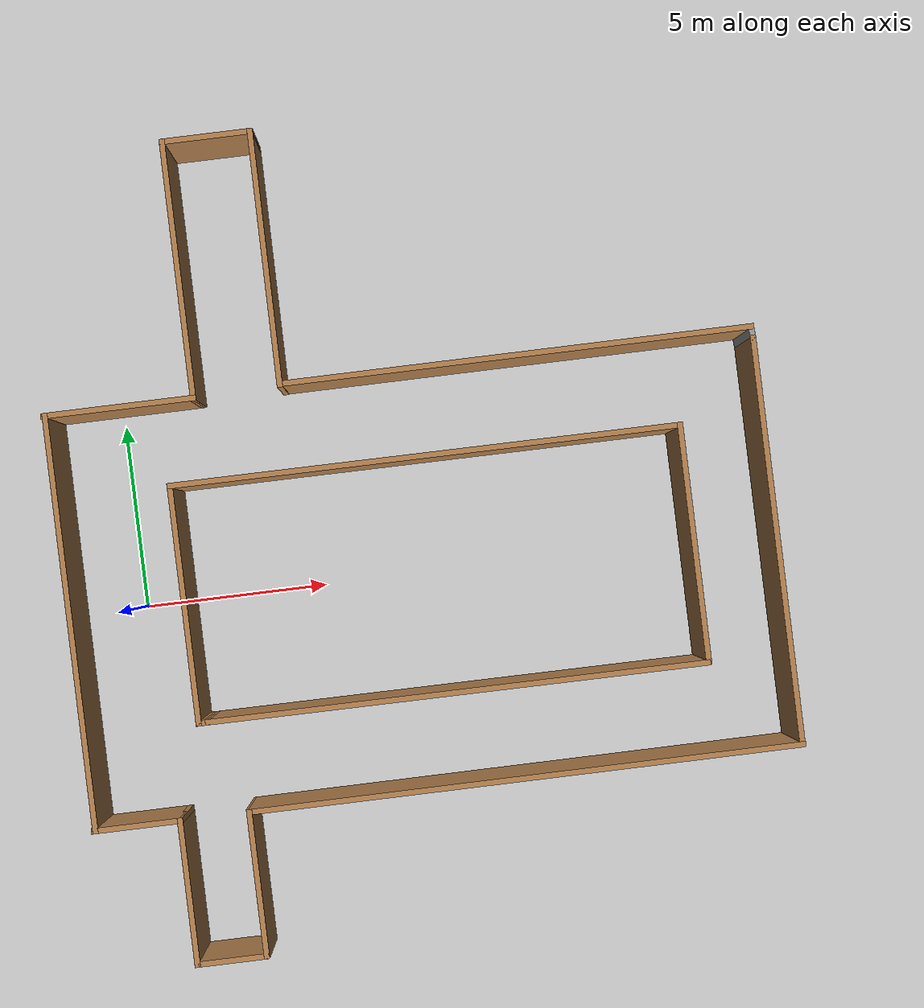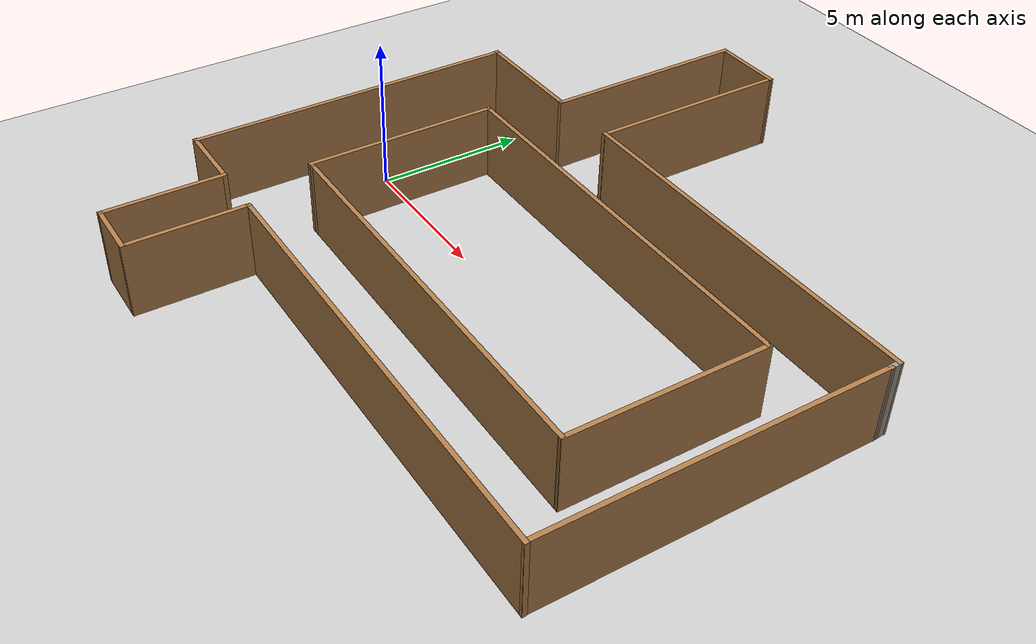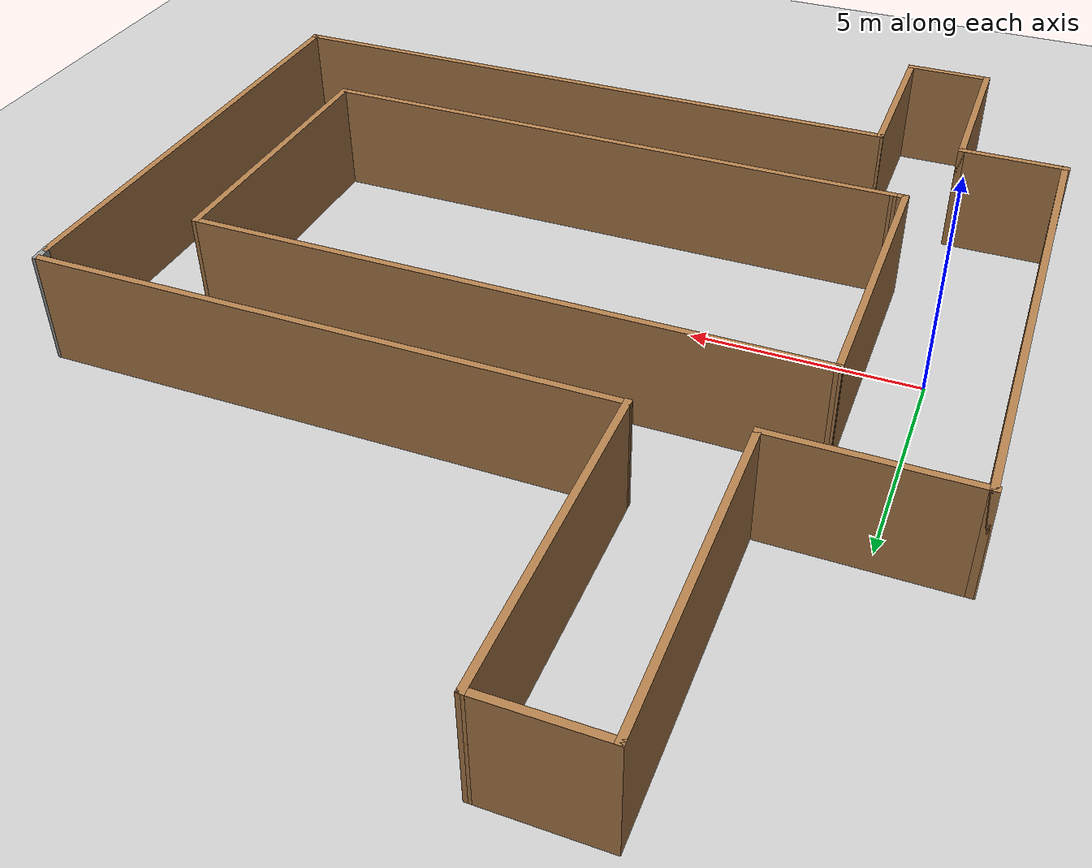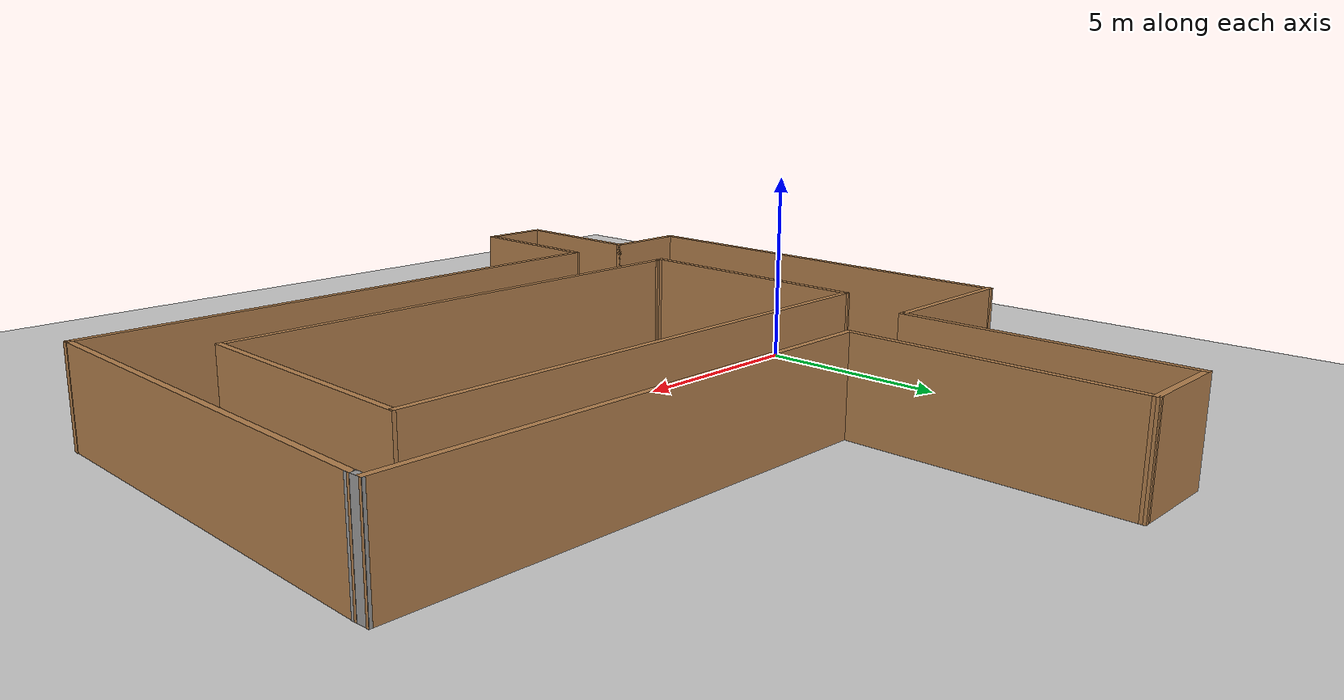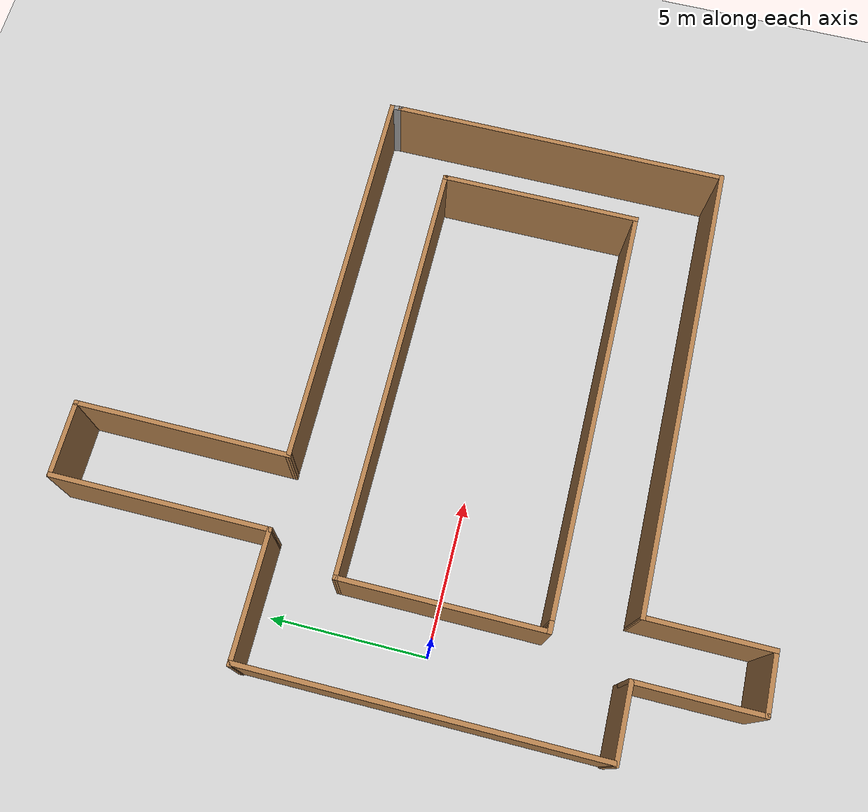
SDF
<sdf version="1.6">
 <world name="default">
  <light name="sun" type="directional">
   <pose>0 0 10 0 -0 0</pose>
   <diffuse>0.8 0.8 0.8 1</diffuse>
   <specular>0.1 0.1 0.1 1</specular>
   <attenuation>
    <range>1000</range>
    <constant>0.9</constant>
    <linear>0.01</linear>
    <quadratic>0.001</quadratic>
   </attenuation>
   <direction>-0.5 0.5 -1</direction>
  </light>
  <model name="ground_plane">
   <static>1</static>
   <link name="link">
    <collision name="collision">
     <geometry><plane><normal>0 0 1</normal><size>100 100</size></plane></geometry>
     <surface><friction><ode><mu>100</mu><mu2>50</mu2></ode></friction></surface>
    </collision>
    <visual name="visual">
     <cast_shadows>0</cast_shadows>
     <geometry><plane><normal>0 0 1</normal><size>100 100</size></plane></geometry>
     <material>
      <script><uri>file://media/materials/scripts/gazebo.material</uri><name>Gazebo/Grey</name></script>
     </material>
    </visual>
   </link>
  </model>
  <gravity>0 0 -9.8</gravity>
  <magnetic_field>6e-06 2.3e-05 -4.2e-05</magnetic_field>
  <atmosphere type="adiabatic"/>
  <physics name="default_physics" default="0" type="ode">
   <max_step_size>0.001</max_step_size>
   <real_time_factor>1</real_time_factor>
   <real_time_update_rate>1000</real_time_update_rate>
  </physics>
  <scene><ambient>0.4 0.4 0.4 1</ambient><background>0.7 0.7 0.7 1</background><shadows>1</shadows></scene>
  <spherical_coordinates>
   <surface_model>EARTH_WGS84</surface_model>
   <latitude_deg>0</latitude_deg>
   <longitude_deg>0</longitude_deg>
   <elevation>0</elevation>
   <heading_deg>0</heading_deg>
  </spherical_coordinates>
  <model name="meam">
   <pose>7.69858 1.33955 0 0 -0 0</pose>
   <link name="Wall_10">
    <collision name="Wall_10_Collision">
     <geometry><box><size>4 0.15 2.5</size></box></geometry>
     <pose>0 0 1.25 0 -0 0</pose>
    </collision>
    <visual name="Wall_10_Visual">
     <pose>0 0 1.25 0 -0 0</pose>
     <geometry><box><size>4 0.15 2.5</size></box></geometry>
     <material>
      <script><uri>file://media/materials/scripts/gazebo.material</uri><name>Gazebo/Wood</name></script>
      <ambient>1 1 1 1</ambient>
     </material>
    </visual>
    <pose>-5.3331 -8.97515 0 0 -0 1.5708</pose>
   </link>
   <link name="Wall_11">
    <collision name="Wall_11_Collision">
     <geometry><box><size>14.9603 0.15 2.5</size></box></geometry>
     <pose>0 0 1.25 0 -0 0</pose>
    </collision>
    <visual name="Wall_11_Visual">
     <pose>0 0 1.25 0 -0 0</pose>
     <geometry><box><size>14.9603 0.15 2.5</size></box></geometry>
     <material>
      <script><uri>file://media/materials/scripts/gazebo.material</uri><name>Gazebo/Wood</name></script>
      <ambient>1 1 1 1</ambient>
     </material>
    </visual>
    <pose>2.07206 -7.04353 0 0 -0 0.000893</pose>
   </link>
   <link name="Wall_12">
    <collision name="Wall_12_Collision">
     <geometry><box><size>11.0265 0.15 2.5</size></box></geometry>
     <pose>0 0 1.25 0 -0 0</pose>
    </collision>
    <visual name="Wall_12_Visual">
     <pose>0 0 1.25 0 -0 0</pose>
     <geometry><box><size>11.0265 0.15 2.5</size></box></geometry>
     <material>
      <script><uri>file://media/materials/scripts/gazebo.material</uri><name>Gazebo/Wood</name></script>
      <ambient>1 1 1 1</ambient>
     </material>
    </visual>
    <pose>9.464 -1.5987 0 0 -0 1.5708</pose>
   </link>
   <link name="Wall_20">
    <collision name="Wall_20_Collision">
     <geometry><box><size>13.5106 0.15 2.5</size></box></geometry>
     <pose>0 0 1.25 0 -0 0</pose>
    </collision>
    <visual name="Wall_20_Visual">
     <pose>0 0 1.25 0 -0 0</pose>
     <geometry><box><size>13.5106 0.15 2.5</size></box></geometry>
     <material>
      <script><uri>file://media/materials/scripts/gazebo.material</uri><name>Gazebo/Wood</name></script>
      <ambient>1 1 1 1</ambient>
     </material>
    </visual>
    <pose>0.550423 -4.5607 0 0 0 -0.00229</pose>
   </link>
   <link name="Wall_22">
    <collision name="Wall_22_Collision">
     <geometry><box><size>6.5 0.15 2.5</size></box></geometry>
     <pose>0 0 1.25 0 -0 0</pose>
    </collision>
    <visual name="Wall_22_Visual">
     <pose>0 0 1.25 0 -0 0</pose>
     <geometry><box><size>6.5 0.15 2.5</size></box></geometry>
     <material>
      <script><uri>file://media/materials/scripts/gazebo.material</uri><name>Gazebo/Wood</name></script>
      <ambient>1 1 1 1</ambient>
     </material>
    </visual>
    <pose>7.26129 -1.40099 0 0 -0 1.5708</pose>
   </link>
   <link name="Wall_23">
    <collision name="Wall_23_Collision">
     <geometry><box><size>13.7606 0.15 2.5</size></box></geometry>
     <pose>0 0 1.25 0 -0 0</pose>
    </collision>
    <visual name="Wall_23_Visual">
     <pose>0 0 1.25 0 -0 0</pose>
     <geometry><box><size>13.7606 0.15 2.5</size></box></geometry>
     <material>
      <script><uri>file://media/materials/scripts/gazebo.material</uri><name>Gazebo/Wood</name></script>
      <ambient>1 1 1 1</ambient>
     </material>
    </visual>
    <pose>0.425423 1.7893 0 0 -0 3.13935</pose>
   </link>
   <link name="Wall_24">
    <collision name="Wall_24_Collision">
     <geometry><box><size>6.5 0.15 2.5</size></box></geometry>
     <pose>0 0 1.25 0 -0 0</pose>
    </collision>
    <visual name="Wall_24_Visual">
     <pose>0 0 1.25 0 -0 0</pose>
     <geometry><box><size>6.5 0.15 2.5</size></box></geometry>
     <material>
      <script><uri>file://media/materials/scripts/gazebo.material</uri><name>Gazebo/Wood</name></script>
      <ambient>1 1 1 1</ambient>
     </material>
    </visual>
    <pose>-6.37986 -1.3704 0 0 0 -1.5708</pose>
   </link>
   <link name="Wall_25">
    <collision name="Wall_25_Collision">
     <geometry><box><size>0.4 0.15 2.5</size></box></geometry>
     <pose>0 0 1.25 0 -0 0</pose>
    </collision>
    <visual name="Wall_25_Visual">
     <pose>0 0 1.25 0 -0 0</pose>
     <geometry><box><size>0.4 0.15 2.5</size></box></geometry>
     <material>
      <script><uri>file://media/materials/scripts/gazebo.material</uri><name>Gazebo/Wood</name></script>
      <ambient>1 1 1 1</ambient>
     </material>
    </visual>
    <pose>-6.25486 -4.5454 0 0 -0 0</pose>
   </link>
   <link name="Wall_27">
    <collision name="Wall_27_Collision">
     <geometry><box><size>11.25 0.15 2.5</size></box></geometry>
     <pose>0 0 1.25 0 -0 0</pose>
    </collision>
    <visual name="Wall_27_Visual">
     <pose>0 0 1.25 0 -0 0</pose>
     <geometry><box><size>11.25 0.15 2.5</size></box></geometry>
     <material>
      <script><uri>file://media/materials/scripts/gazebo.material</uri><name>Gazebo/Wood</name></script>
      <ambient>1 1 1 1</ambient>
     </material>
    </visual>
    <pose>-9.4467 -1.50015 0 0 -0 1.5708</pose>
   </link>
   <link name="Wall_28">
    <collision name="Wall_28_Collision">
     <geometry><box><size>4.14767 0.15 2.5</size></box></geometry>
     <pose>0 0 1.25 0 -0 0</pose>
    </collision>
    <visual name="Wall_28_Visual">
     <pose>0 0 1.25 0 -0 0</pose>
     <geometry><box><size>4.14767 0.15 2.5</size></box></geometry>
     <material>
      <script><uri>file://media/materials/scripts/gazebo.material</uri><name>Gazebo/Wood</name></script>
      <ambient>1 1 1 1</ambient>
     </material>
    </visual>
    <pose>-7.47846 4.04985 0 0 -0 0</pose>
   </link>
   <link name="Wall_29">
    <collision name="Wall_29_Collision">
     <geometry><box><size>7 0.15 2.5</size></box></geometry>
     <pose>0 0 1.25 0 -0 0</pose>
    </collision>
    <visual name="Wall_29_Visual">
     <pose>0 0 1.25 0 -0 0</pose>
     <geometry><box><size>7 0.15 2.5</size></box></geometry>
     <material>
      <script><uri>file://media/materials/scripts/gazebo.material</uri><name>Gazebo/Wood</name></script>
      <ambient>1 1 1 1</ambient>
     </material>
    </visual>
    <pose>-5.47962 7.47485 0 0 -0 1.5708</pose>
   </link>
   <link name="Wall_30">
    <collision name="Wall_30_Collision">
     <geometry><box><size>2.5 0.15 2.5</size></box></geometry>
     <pose>0 0 1.25 0 -0 0</pose>
    </collision>
    <visual name="Wall_30_Visual">
     <pose>0 0 1.25 0 -0 0</pose>
     <geometry><box><size>2.5 0.15 2.5</size></box></geometry>
     <material>
      <script><uri>file://media/materials/scripts/gazebo.material</uri><name>Gazebo/Wood</name></script>
      <ambient>1 1 1 1</ambient>
     </material>
    </visual>
    <pose>-4.30462 10.8999 0 0 -0 0</pose>
   </link>
   <link name="Wall_31">
    <collision name="Wall_31_Collision">
     <geometry><box><size>6.9207 0.15 2.5</size></box></geometry>
     <pose>0 0 1.25 0 -0 0</pose>
    </collision>
    <visual name="Wall_31_Visual">
     <pose>0 0 1.25 0 -0 0</pose>
     <geometry><box><size>6.9207 0.15 2.5</size></box></geometry>
     <material>
      <script><uri>file://media/materials/scripts/gazebo.material</uri><name>Gazebo/Wood</name></script>
      <ambient>1 1 1 1</ambient>
     </material>
    </visual>
    <pose>-3.14285 7.51453 0 0 0 -1.5747</pose>
   </link>
   <link name="Wall_32">
    <collision name="Wall_32_Collision">
     <geometry><box><size>12.75 0.15 2.5</size></box></geometry>
     <pose>0 0 1.25 0 -0 0</pose>
    </collision>
    <visual name="Wall_32_Visual">
     <pose>0 0 1.25 0 -0 0</pose>
     <geometry><box><size>12.75 0.15 2.5</size></box></geometry>
     <material>
      <script><uri>file://media/materials/scripts/gazebo.material</uri><name>Gazebo/Wood</name></script>
      <ambient>1 1 1 1</ambient>
     </material>
    </visual>
    <pose>3.14393 4.14243 0 0 -0 0</pose>
   </link>
   <link name="Wall_35">
    <collision name="Wall_35_Collision">
     <geometry><box><size>0.453564 0.15 2.5</size></box></geometry>
     <pose>0 0 1.25 0 -0 0</pose>
    </collision>
    <visual name="Wall_35_Visual">
     <pose>0 0 1.25 0 -0 0</pose>
     <geometry><box><size>0.453564 0.15 2.5</size></box></geometry>
     <material>
      <script><uri>file://media/materials/scripts/gazebo.material</uri><name>Gazebo/Grey</name></script>
      <ambient>1 1 1 1</ambient>
     </material>
    </visual>
    <pose>9.45397 3.99098 0 0 -0 1.63697</pose>
   </link>
   <link name="Wall_5">
    <collision name="Wall_5_Collision">
     <geometry><box><size>2.4442 0.15 2.5</size></box></geometry>
     <pose>0 0 1.25 0 -0 0</pose>
    </collision>
    <visual name="Wall_5_Visual">
     <pose>0 0 1.25 0 -0 0</pose>
     <geometry><box><size>2.4442 0.15 2.5</size></box></geometry>
     <material>
      <script><uri>file://media/materials/scripts/gazebo.material</uri><name>Gazebo/Wood</name></script>
      <ambient>1 1 1 1</ambient>
     </material>
    </visual>
    <pose>-8.33019 -7.05015 0 0 -0 0</pose>
   </link>
   <link name="Wall_8">
    <collision name="Wall_8_Collision">
     <geometry><box><size>4 0.15 2.5</size></box></geometry>
     <pose>0 0 1.25 0 -0 0</pose>
    </collision>
    <visual name="Wall_8_Visual">
     <pose>0 0 1.25 0 -0 0</pose>
     <geometry><box><size>4 0.15 2.5</size></box></geometry>
     <material>
      <script><uri>file://media/materials/scripts/gazebo.material</uri><name>Gazebo/Wood</name></script>
      <ambient>1 1 1 1</ambient>
     </material>
    </visual>
    <pose>-7.1831 -8.97515 0 0 0 -1.5708</pose>
   </link>
   <link name="Wall_9">
    <collision name="Wall_9_Collision">
     <geometry><box><size>2 0.15 2.5</size></box></geometry>
     <pose>0 0 1.25 0 -0 0</pose>
    </collision>
    <visual name="Wall_9_Visual">
     <pose>0 0 1.25 0 -0 0</pose>
     <geometry><box><size>2 0.15 2.5</size></box></geometry>
     <material>
      <script><uri>file://media/materials/scripts/gazebo.material</uri><name>Gazebo/Wood</name></script>
      <ambient>1 1 1 1</ambient>
     </material>
    </visual>
    <pose>-6.2581 -10.9001 0 0 -0 0</pose>
   </link>
   <static>1</static>
  </model>
 </world>
</sdf>
